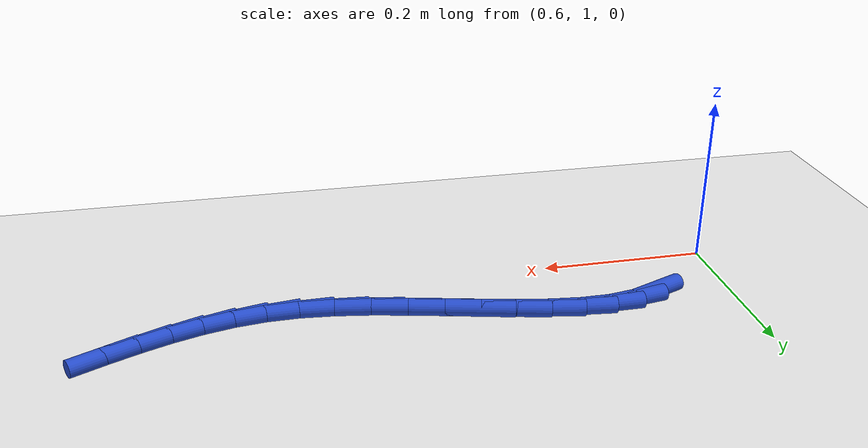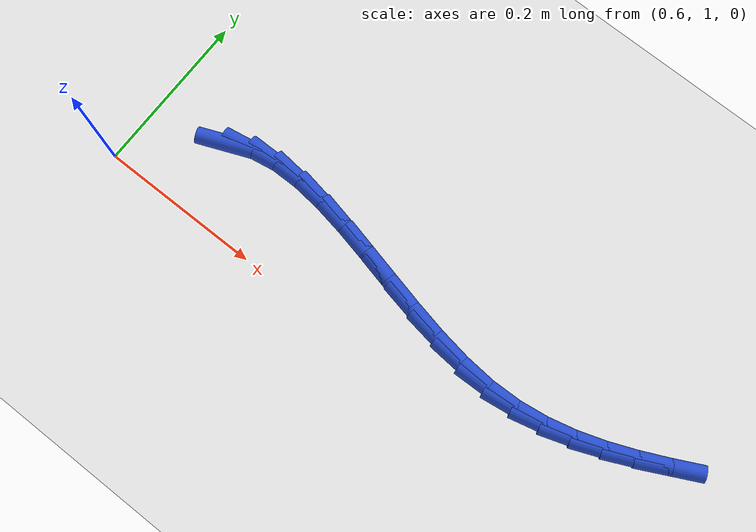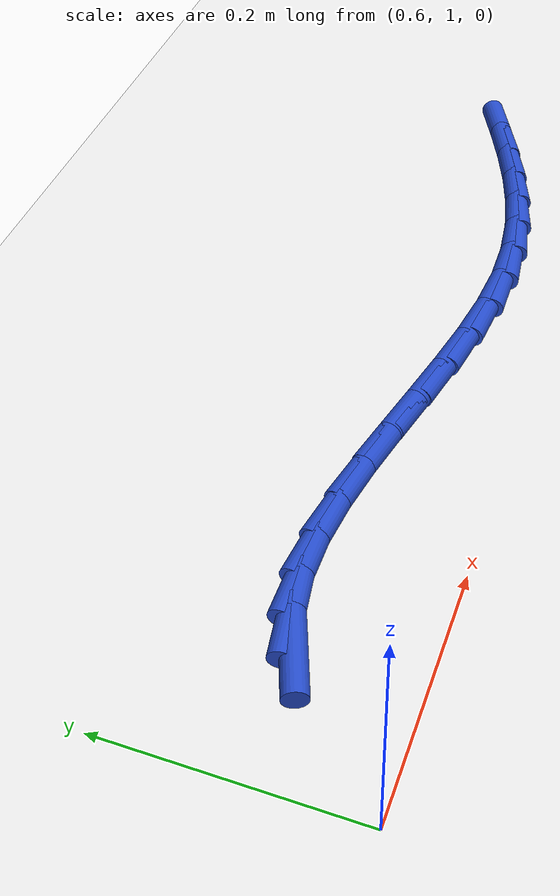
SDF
<sdf version="1.6">
 <world name="default">
  <model name="ground_plane">
   <static>1</static>
   <link name="link">
    <collision name="collision">
     <geometry><plane><normal>0 0 1</normal><size>100 100</size></plane></geometry>
     <surface><friction><ode><mu>100</mu><mu2>50</mu2></ode></friction></surface>
    </collision>
    <visual name="visual">
     <cast_shadows>0</cast_shadows>
     <geometry><plane><normal>0 0 1</normal><size>100 100</size></plane></geometry>
     <material>
      <script><uri>file://media/materials/scripts/gazebo.material</uri><name>Gazebo/WhiteGlow</name></script>
     </material>
    </visual>
   </link>
  </model>
  <model name="line">
   <link name="link_37">
    <pose>0.6982896079878961 1.0931949683809796 0.01 0 1.57 0.38666025852919494</pose>
    <collision name="collision">
     <geometry><cylinder><radius>0.01</radius><length>0.08</length></cylinder></geometry>
    </collision>
    <visual name="visual">
     <material>
      <script><name>Gazebo/Blue</name><uri>file://media/materials/scripts/gazebo.material</uri></script>
     </material>
     <geometry><cylinder><radius>0.01</radius><length>0.08</length></cylinder></geometry>
    </visual>
   </link>
   <link name="link_38">
    <pose>0.7257406513950206 1.1043718311247186 0.01 0 1.57 0.16597585879908255</pose>
    <collision name="collision">
     <geometry><cylinder><radius>0.01</radius><length>0.08</length></cylinder></geometry>
    </collision>
    <visual name="visual">
     <material>
      <script><name>Gazebo/Blue</name><uri>file://media/materials/scripts/gazebo.material</uri></script>
     </material>
     <geometry><cylinder><radius>0.01</radius><length>0.08</length></cylinder></geometry>
    </visual>
   </link>
   <link name="link_39">
    <pose>0.7566835093931303 1.109555284095823 0.01 0 1.57 0.005996668947930194</pose>
    <collision name="collision">
     <geometry><cylinder><radius>0.01</radius><length>0.08</length></cylinder></geometry>
    </collision>
    <visual name="visual">
     <material>
      <script><name>Gazebo/Blue</name><uri>file://media/materials/scripts/gazebo.material</uri></script>
     </material>
     <geometry><cylinder><radius>0.01</radius><length>0.08</length></cylinder></geometry>
    </visual>
   </link>
   <link name="link_40">
    <pose>0.7905997571135505 1.1097586710432983 0.01 0 1.57 -0.10310326478007036</pose>
    <collision name="collision">
     <geometry><cylinder><radius>0.01</radius><length>0.08</length></cylinder></geometry>
    </collision>
    <visual name="visual">
     <material>
      <script><name>Gazebo/Blue</name><uri>file://media/materials/scripts/gazebo.material</uri></script>
     </material>
     <geometry><cylinder><radius>0.01</radius><length>0.08</length></cylinder></geometry>
    </visual>
   </link>
   <link name="link_41">
    <pose>0.8269709696876066 1.1059953357161494 0.01 0 1.57 -0.1735713027183427</pose>
    <collision name="collision">
     <geometry><cylinder><radius>0.01</radius><length>0.08</length></cylinder></geometry>
    </collision>
    <visual name="visual">
     <material>
      <script><name>Gazebo/Blue</name><uri>file://media/materials/scripts/gazebo.material</uri></script>
     </material>
     <geometry><cylinder><radius>0.01</radius><length>0.08</length></cylinder></geometry>
    </visual>
   </link>
   <link name="link_42">
    <pose>0.8652787222466239 1.0992786218633823 0.01 0 1.57 -0.21455795697249452</pose>
    <collision name="collision">
     <geometry><cylinder><radius>0.01</radius><length>0.08</length></cylinder></geometry>
    </collision>
    <visual name="visual">
     <material>
      <script><name>Gazebo/Blue</name><uri>file://media/materials/scripts/gazebo.material</uri></script>
     </material>
     <geometry><cylinder><radius>0.01</radius><length>0.08</length></cylinder></geometry>
    </visual>
   </link>
   <link name="link_43">
    <pose>0.9050045899219278 1.0906218732340014 0.01 0 1.57 -0.23166166934272933</pose>
    <collision name="collision">
     <geometry><cylinder><radius>0.01</radius><length>0.08</length></cylinder></geometry>
    </collision>
    <visual name="visual">
     <material>
      <script><name>Gazebo/Blue</name><uri>file://media/materials/scripts/gazebo.material</uri></script>
     </material>
     <geometry><cylinder><radius>0.01</radius><length>0.08</length></cylinder></geometry>
    </visual>
   </link>
   <link name="link_44">
    <pose>0.9456301478448437 1.0810384335770127 0.01 0 1.57 -0.2275783645934718</pose>
    <collision name="collision">
     <geometry><cylinder><radius>0.01</radius><length>0.08</length></cylinder></geometry>
    </collision>
    <visual name="visual">
     <material>
      <script><name>Gazebo/Blue</name><uri>file://media/materials/scripts/gazebo.material</uri></script>
     </material>
     <geometry><cylinder><radius>0.01</radius><length>0.08</length></cylinder></geometry>
    </visual>
   </link>
   <link name="link_45">
    <pose>0.9866369711466966 1.0715416466414212 0.01 0 1.57 -0.20263318118459986</pose>
    <collision name="collision">
     <geometry><cylinder><radius>0.01</radius><length>0.08</length></cylinder></geometry>
    </collision>
    <visual name="visual">
     <material>
      <script><name>Gazebo/Blue</name><uri>file://media/materials/scripts/gazebo.material</uri></script>
     </material>
     <geometry><cylinder><radius>0.01</radius><length>0.08</length></cylinder></geometry>
    </visual>
   </link>
   <link name="link_46">
    <pose>1.027506634958812 1.0631448561762313 0.01 0 1.57 -0.15499674996213622</pose>
    <collision name="collision">
     <geometry><cylinder><radius>0.01</radius><length>0.08</length></cylinder></geometry>
    </collision>
    <visual name="visual">
     <material>
      <script><name>Gazebo/Blue</name><uri>file://media/materials/scripts/gazebo.material</uri></script>
     </material>
     <geometry><cylinder><radius>0.01</radius><length>0.08</length></cylinder></geometry>
    </visual>
   </link>
   <link name="link_47">
    <pose>1.0677207144125154 1.0568614059304497 0.01 0 1.57 -0.08068410687579954</pose>
    <collision name="collision">
     <geometry><cylinder><radius>0.01</radius><length>0.08</length></cylinder></geometry>
    </collision>
    <visual name="visual">
     <material>
      <script><name>Gazebo/Blue</name><uri>file://media/materials/scripts/gazebo.material</uri></script>
     </material>
     <geometry><cylinder><radius>0.01</radius><length>0.08</length></cylinder></geometry>
    </visual>
   </link>
   <link name="link_48">
    <pose>1.1067607846391323 1.053704639653081 0.01 0 1.57 0.023153118692723625</pose>
    <collision name="collision">
     <geometry><cylinder><radius>0.01</radius><length>0.08</length></cylinder></geometry>
    </collision>
    <visual name="visual">
     <material>
      <script><name>Gazebo/Blue</name><uri>file://media/materials/scripts/gazebo.material</uri></script>
     </material>
     <geometry><cylinder><radius>0.01</radius><length>0.08</length></cylinder></geometry>
    </visual>
   </link>
   <link name="link_49">
    <pose>1.1441759204244601 1.05457107156018 0.01 0 1.57 0.13381082758630672</pose>
    <collision name="collision">
     <geometry><cylinder><radius>0.01</radius><length>0.08</length></cylinder></geometry>
    </collision>
    <visual name="visual">
     <material>
      <script><name>Gazebo/Blue</name><uri>file://media/materials/scripts/gazebo.material</uri></script>
     </material>
     <geometry><cylinder><radius>0.01</radius><length>0.08</length></cylinder></geometry>
    </visual>
   </link>
   <link name="link_50">
    <pose>1.1800667789540844 1.0594025278082169 0.01 0 1.57 0.2337774680418277</pose>
    <collision name="collision">
     <geometry><cylinder><radius>0.01</radius><length>0.08</length></cylinder></geometry>
    </collision>
    <visual name="visual">
     <material>
      <script><name>Gazebo/Blue</name><uri>file://media/materials/scripts/gazebo.material</uri></script>
     </material>
     <geometry><cylinder><radius>0.01</radius><length>0.08</length></cylinder></geometry>
    </visual>
   </link>
   <link name="link_51">
    <pose>1.2148034874800648 1.0676744312475028 0.01 0 1.57 0.31820620352649354</pose>
    <collision name="collision">
     <geometry><cylinder><radius>0.01</radius><length>0.08</length></cylinder></geometry>
    </collision>
    <visual name="visual">
     <material>
      <script><name>Gazebo/Blue</name><uri>file://media/materials/scripts/gazebo.material</uri></script>
     </material>
     <geometry><cylinder><radius>0.01</radius><length>0.08</length></cylinder></geometry>
    </visual>
   </link>
   <link name="link_52">
    <pose>1.2487580010700439 1.0788590411145178 0.01 0 1.57 0.384403145789395</pose>
    <collision name="collision">
     <geometry><cylinder><radius>0.01</radius><length>0.08</length></cylinder></geometry>
    </collision>
    <visual name="visual">
     <material>
      <script><name>Gazebo/Blue</name><uri>file://media/materials/scripts/gazebo.material</uri></script>
     </material>
     <geometry><cylinder><radius>0.01</radius><length>0.08</length></cylinder></geometry>
    </visual>
   </link>
   <link name="link_53">
    <pose>1.2823022747916633 1.0924286166457402 0.01 0 1.57 0.4314846699349305</pose>
    <collision name="collision">
     <geometry><cylinder><radius>0.01</radius><length>0.08</length></cylinder></geometry>
    </collision>
    <visual name="visual">
     <material>
      <script><name>Gazebo/Blue</name><uri>file://media/materials/scripts/gazebo.material</uri></script>
     </material>
     <geometry><cylinder><radius>0.01</radius><length>0.08</length></cylinder></geometry>
    </visual>
   </link>
   <link name="link_54">
    <pose>1.3158082637125625 1.1078554170776491 0.01 0 1.57 0.45977378798092217</pose>
    <collision name="collision">
     <geometry><cylinder><radius>0.01</radius><length>0.08</length></cylinder></geometry>
    </collision>
    <visual name="visual">
     <material>
      <script><name>Gazebo/Blue</name><uri>file://media/materials/scripts/gazebo.material</uri></script>
     </material>
     <geometry><cylinder><radius>0.01</radius><length>0.08</length></cylinder></geometry>
    </visual>
   </link>
  </model>
 </world>
</sdf>
